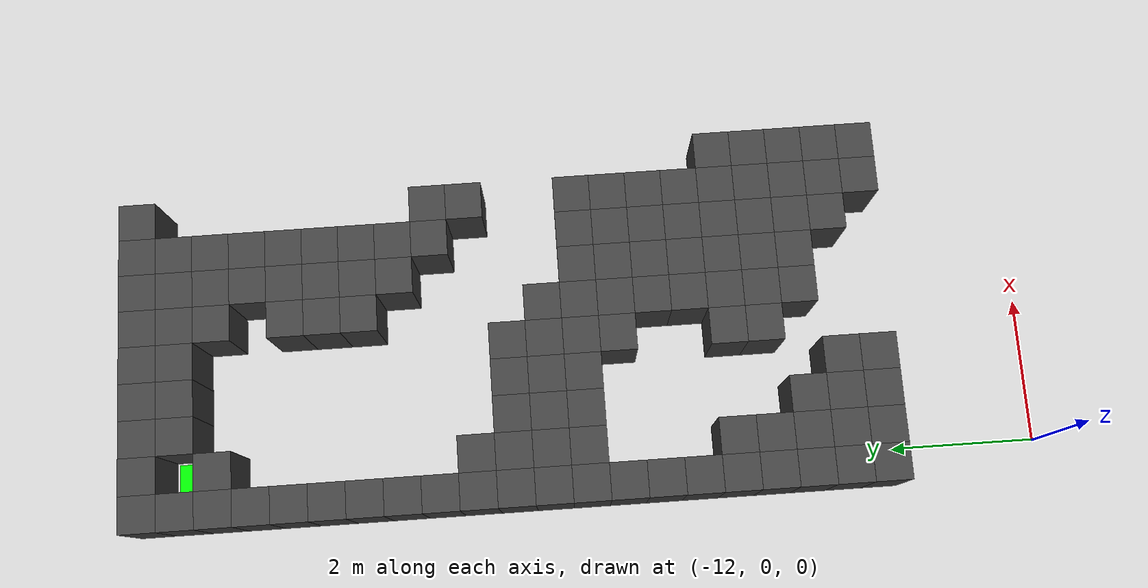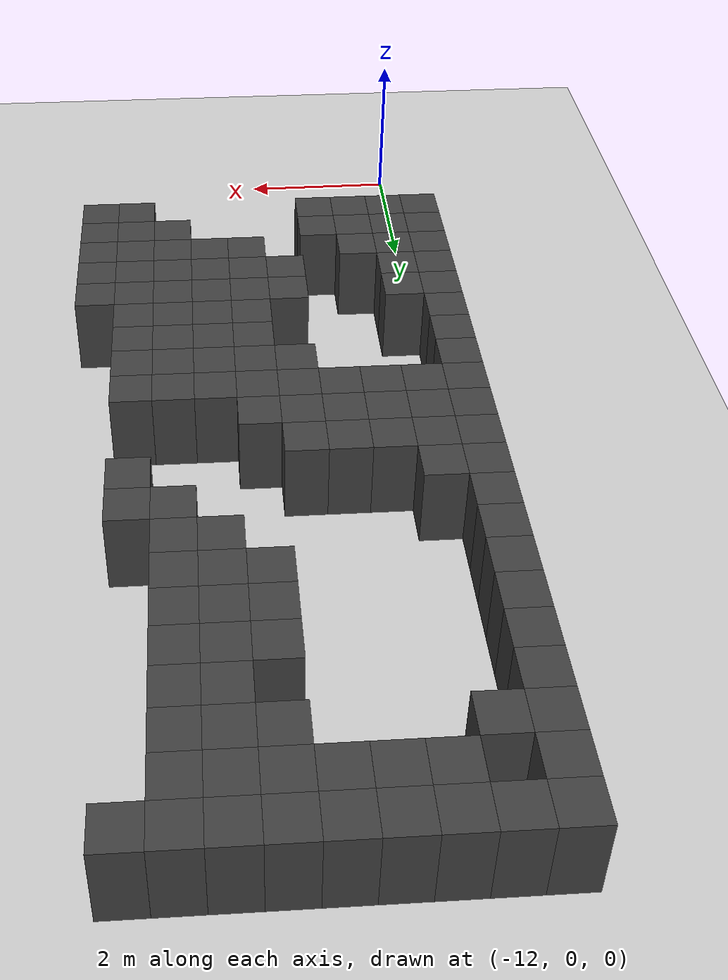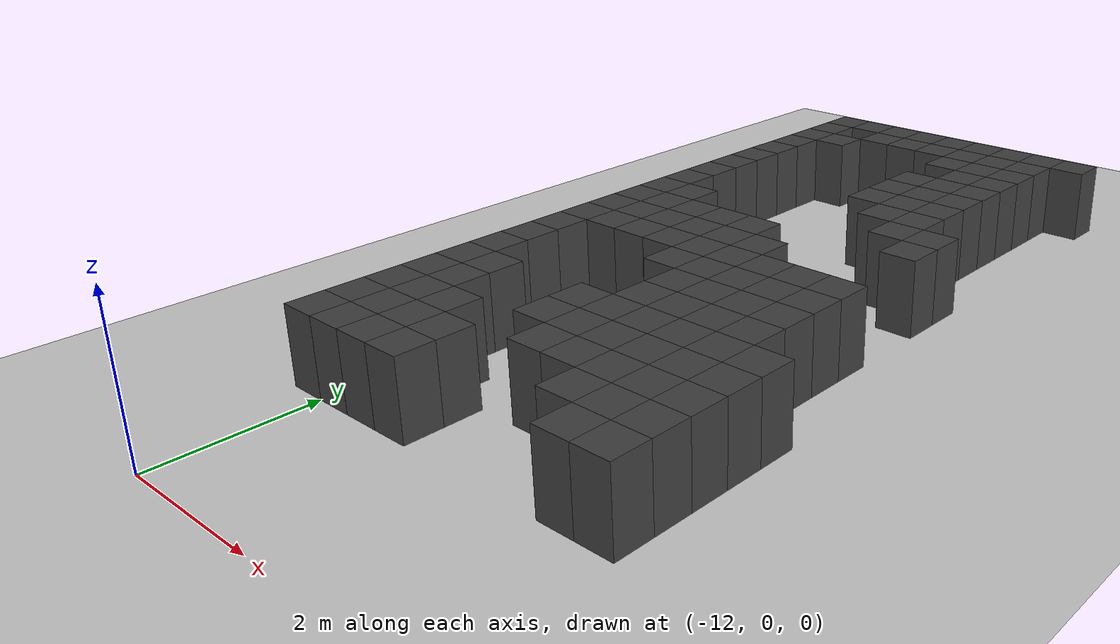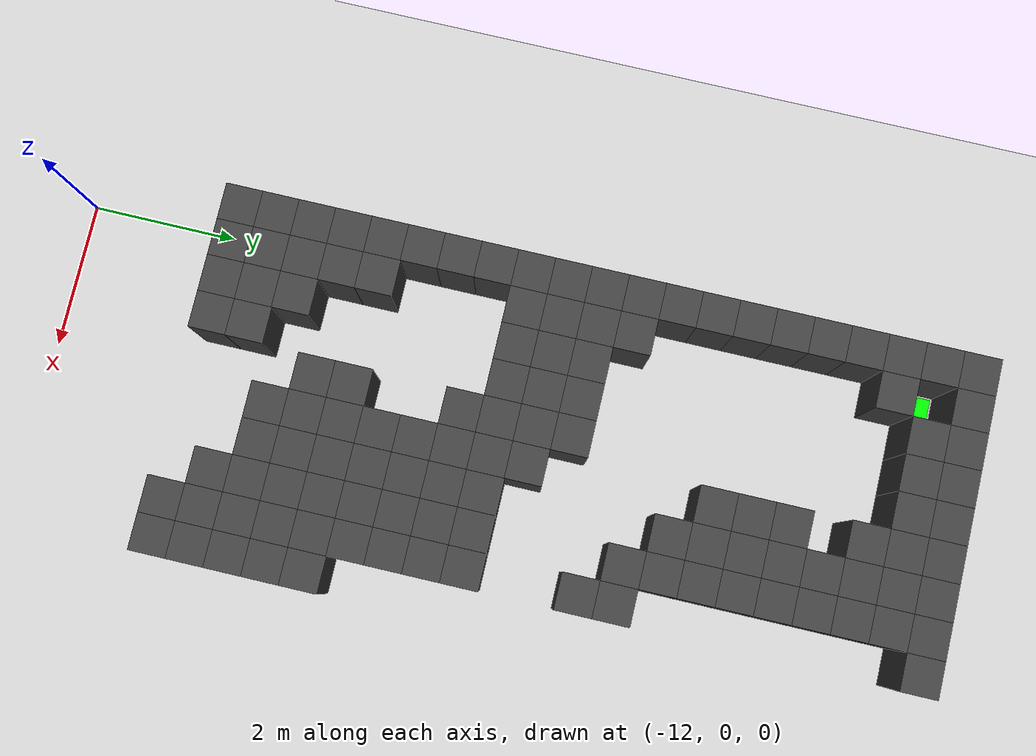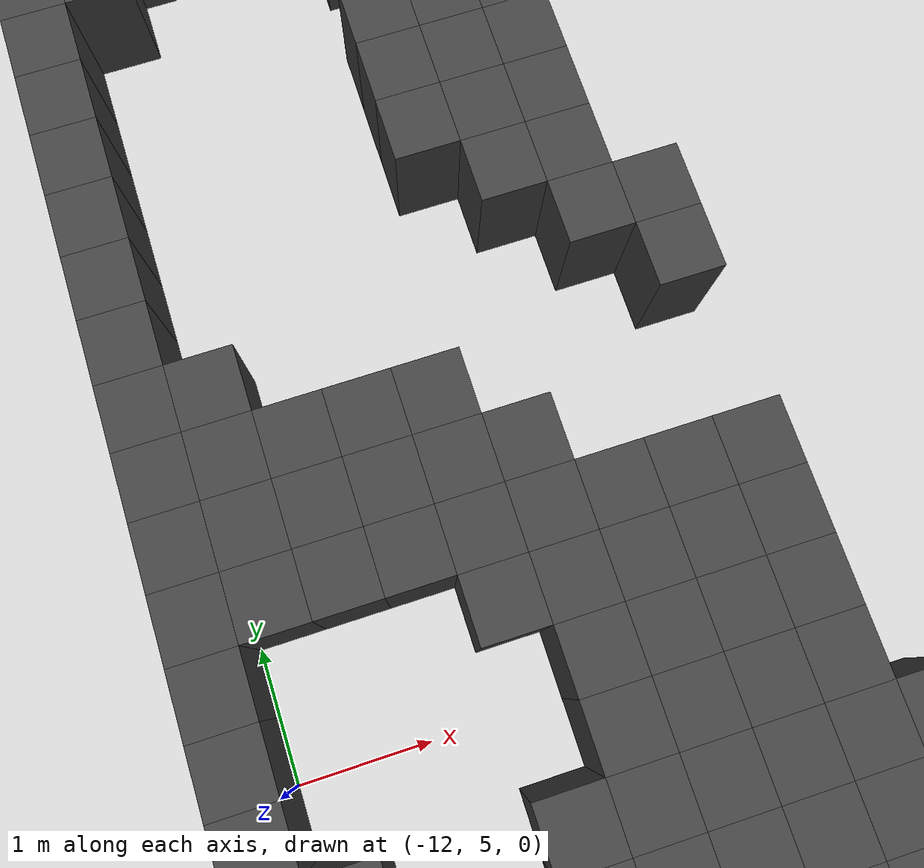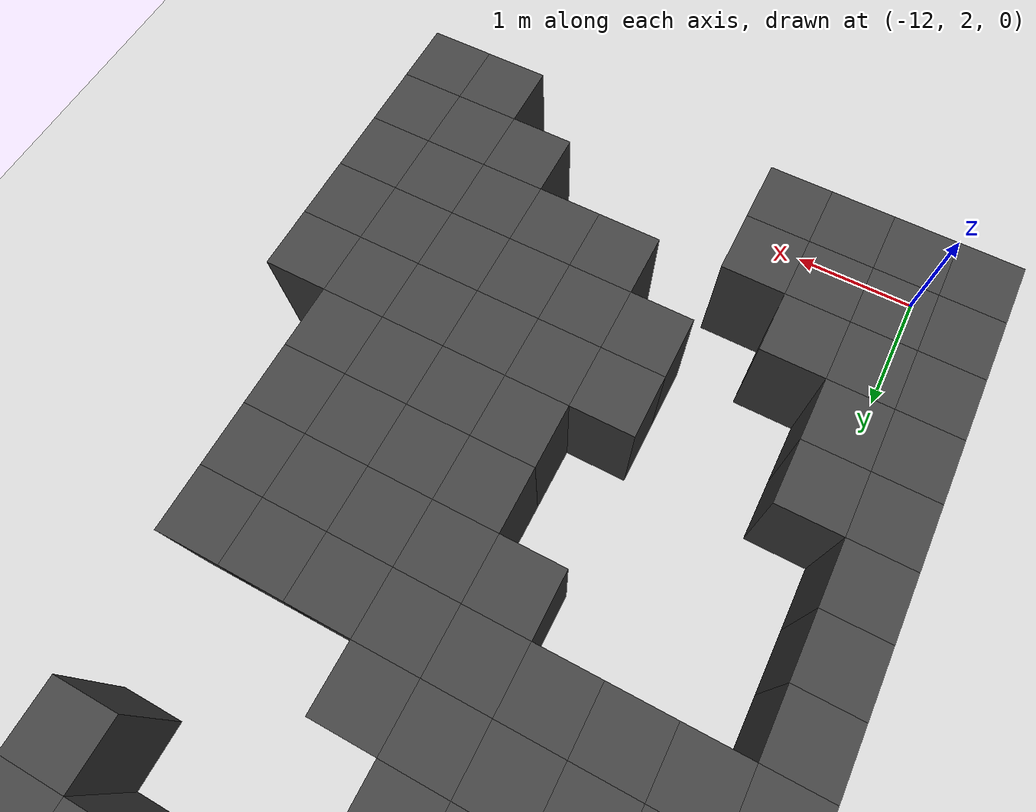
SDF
<sdf version="1.7">
 <world name="map_9705">
  <model name="ground_plane">
   <static>true</static>
   <link name="link">
    <collision name="collision">
     <geometry><plane><normal>0 0 1</normal><size>200 200</size></plane></geometry>
    </collision>
    <visual name="visual">
     <geometry><plane><normal>0 0 1</normal><size>200 200</size></plane></geometry>
     <material><ambient>0.8 0.8 0.8 1</ambient><diffuse>0.8 0.8 0.8 1</diffuse></material>
    </visual>
   </link>
  </model>
  <model name="maze_environment">
   <static>true</static>
   <link name="wall_0">
    <pose>-12.250 12.250 0.500 0 0 0</pose>
    <collision name="col"><geometry><box><size>0.5 0.5 1.0</size></box></geometry></collision>
    <visual name="vis">
     <geometry><box><size>0.5 0.5 1.0</size></box></geometry>
     <material><ambient>0.15 0.15 0.15 1</ambient><diffuse>0.25 0.25 0.25 1</diffuse></material>
    </visual>
   </link>
   <link name="wall_1">
    <pose>-11.750 12.250 0.500 0 0 0</pose>
    <collision name="col"><geometry><box><size>0.5 0.5 1.0</size></box></geometry></collision>
    <visual name="vis">
     <geometry><box><size>0.5 0.5 1.0</size></box></geometry>
     <material><ambient>0.15 0.15 0.15 1</ambient><diffuse>0.25 0.25 0.25 1</diffuse></material>
    </visual>
   </link>
   <link name="wall_2">
    <pose>-11.250 12.250 0.500 0 0 0</pose>
    <collision name="col"><geometry><box><size>0.5 0.5 1.0</size></box></geometry></collision>
    <visual name="vis">
     <geometry><box><size>0.5 0.5 1.0</size></box></geometry>
     <material><ambient>0.15 0.15 0.15 1</ambient><diffuse>0.25 0.25 0.25 1</diffuse></material>
    </visual>
   </link>
   <link name="wall_3">
    <pose>-10.750 12.250 0.500 0 0 0</pose>
    <collision name="col"><geometry><box><size>0.5 0.5 1.0</size></box></geometry></collision>
    <visual name="vis">
     <geometry><box><size>0.5 0.5 1.0</size></box></geometry>
     <material><ambient>0.15 0.15 0.15 1</ambient><diffuse>0.25 0.25 0.25 1</diffuse></material>
    </visual>
   </link>
   <link name="wall_4">
    <pose>-10.250 12.250 0.500 0 0 0</pose>
    <collision name="col"><geometry><box><size>0.5 0.5 1.0</size></box></geometry></collision>
    <visual name="vis">
     <geometry><box><size>0.5 0.5 1.0</size></box></geometry>
     <material><ambient>0.15 0.15 0.15 1</ambient><diffuse>0.25 0.25 0.25 1</diffuse></material>
    </visual>
   </link>
   <link name="wall_5">
    <pose>-9.750 12.250 0.500 0 0 0</pose>
    <collision name="col"><geometry><box><size>0.5 0.5 1.0</size></box></geometry></collision>
    <visual name="vis">
     <geometry><box><size>0.5 0.5 1.0</size></box></geometry>
     <material><ambient>0.15 0.15 0.15 1</ambient><diffuse>0.25 0.25 0.25 1</diffuse></material>
    </visual>
   </link>
   <link name="wall_6">
    <pose>-9.250 12.250 0.500 0 0 0</pose>
    <collision name="col"><geometry><box><size>0.5 0.5 1.0</size></box></geometry></collision>
    <visual name="vis">
     <geometry><box><size>0.5 0.5 1.0</size></box></geometry>
     <material><ambient>0.15 0.15 0.15 1</ambient><diffuse>0.25 0.25 0.25 1</diffuse></material>
    </visual>
   </link>
   <link name="wall_7">
    <pose>-8.750 12.250 0.500 0 0 0</pose>
    <collision name="col"><geometry><box><size>0.5 0.5 1.0</size></box></geometry></collision>
    <visual name="vis">
     <geometry><box><size>0.5 0.5 1.0</size></box></geometry>
     <material><ambient>0.15 0.15 0.15 1</ambient><diffuse>0.25 0.25 0.25 1</diffuse></material>
    </visual>
   </link>
   <link name="wall_8">
    <pose>-8.250 12.250 0.500 0 0 0</pose>
    <collision name="col"><geometry><box><size>0.5 0.5 1.0</size></box></geometry></collision>
    <visual name="vis">
     <geometry><box><size>0.5 0.5 1.0</size></box></geometry>
     <material><ambient>0.15 0.15 0.15 1</ambient><diffuse>0.25 0.25 0.25 1</diffuse></material>
    </visual>
   </link>
   <link name="wall_50">
    <pose>-12.250 11.750 0.500 0 0 0</pose>
    <collision name="col"><geometry><box><size>0.5 0.5 1.0</size></box></geometry></collision>
    <visual name="vis">
     <geometry><box><size>0.5 0.5 1.0</size></box></geometry>
     <material><ambient>0.15 0.15 0.15 1</ambient><diffuse>0.25 0.25 0.25 1</diffuse></material>
    </visual>
   </link>
   <link name="wall_51">
    <pose>-11.250 11.750 0.500 0 0 0</pose>
    <collision name="col"><geometry><box><size>0.5 0.5 1.0</size></box></geometry></collision>
    <visual name="vis">
     <geometry><box><size>0.5 0.5 1.0</size></box></geometry>
     <material><ambient>0.15 0.15 0.15 1</ambient><diffuse>0.25 0.25 0.25 1</diffuse></material>
    </visual>
   </link>
   <link name="wall_52">
    <pose>-10.750 11.750 0.500 0 0 0</pose>
    <collision name="col"><geometry><box><size>0.5 0.5 1.0</size></box></geometry></collision>
    <visual name="vis">
     <geometry><box><size>0.5 0.5 1.0</size></box></geometry>
     <material><ambient>0.15 0.15 0.15 1</ambient><diffuse>0.25 0.25 0.25 1</diffuse></material>
    </visual>
   </link>
   <link name="wall_53">
    <pose>-10.250 11.750 0.500 0 0 0</pose>
    <collision name="col"><geometry><box><size>0.5 0.5 1.0</size></box></geometry></collision>
    <visual name="vis">
     <geometry><box><size>0.5 0.5 1.0</size></box></geometry>
     <material><ambient>0.15 0.15 0.15 1</ambient><diffuse>0.25 0.25 0.25 1</diffuse></material>
    </visual>
   </link>
   <link name="wall_54">
    <pose>-9.750 11.750 0.500 0 0 0</pose>
    <collision name="col"><geometry><box><size>0.5 0.5 1.0</size></box></geometry></collision>
    <visual name="vis">
     <geometry><box><size>0.5 0.5 1.0</size></box></geometry>
     <material><ambient>0.15 0.15 0.15 1</ambient><diffuse>0.25 0.25 0.25 1</diffuse></material>
    </visual>
   </link>
   <link name="wall_55">
    <pose>-9.250 11.750 0.500 0 0 0</pose>
    <collision name="col"><geometry><box><size>0.5 0.5 1.0</size></box></geometry></collision>
    <visual name="vis">
     <geometry><box><size>0.5 0.5 1.0</size></box></geometry>
     <material><ambient>0.15 0.15 0.15 1</ambient><diffuse>0.25 0.25 0.25 1</diffuse></material>
    </visual>
   </link>
   <link name="wall_56">
    <pose>-8.750 11.750 0.500 0 0 0</pose>
    <collision name="col"><geometry><box><size>0.5 0.5 1.0</size></box></geometry></collision>
    <visual name="vis">
     <geometry><box><size>0.5 0.5 1.0</size></box></geometry>
     <material><ambient>0.15 0.15 0.15 1</ambient><diffuse>0.25 0.25 0.25 1</diffuse></material>
    </visual>
   </link>
   <link name="wall_79">
    <pose>-12.250 11.250 0.500 0 0 0</pose>
    <collision name="col"><geometry><box><size>0.5 0.5 1.0</size></box></geometry></collision>
    <visual name="vis">
     <geometry><box><size>0.5 0.5 1.0</size></box></geometry>
     <material><ambient>0.15 0.15 0.15 1</ambient><diffuse>0.25 0.25 0.25 1</diffuse></material>
    </visual>
   </link>
   <link name="wall_80">
    <pose>-11.750 11.250 0.500 0 0 0</pose>
    <collision name="col"><geometry><box><size>0.5 0.5 1.0</size></box></geometry></collision>
    <visual name="vis">
     <geometry><box><size>0.5 0.5 1.0</size></box></geometry>
     <material><ambient>0.15 0.15 0.15 1</ambient><diffuse>0.25 0.25 0.25 1</diffuse></material>
    </visual>
   </link>
   <link name="wall_81">
    <pose>-9.750 11.250 0.500 0 0 0</pose>
    <collision name="col"><geometry><box><size>0.5 0.5 1.0</size></box></geometry></collision>
    <visual name="vis">
     <geometry><box><size>0.5 0.5 1.0</size></box></geometry>
     <material><ambient>0.15 0.15 0.15 1</ambient><diffuse>0.25 0.25 0.25 1</diffuse></material>
    </visual>
   </link>
   <link name="wall_82">
    <pose>-9.250 11.250 0.500 0 0 0</pose>
    <collision name="col"><geometry><box><size>0.5 0.5 1.0</size></box></geometry></collision>
    <visual name="vis">
     <geometry><box><size>0.5 0.5 1.0</size></box></geometry>
     <material><ambient>0.15 0.15 0.15 1</ambient><diffuse>0.25 0.25 0.25 1</diffuse></material>
    </visual>
   </link>
   <link name="wall_83">
    <pose>-8.750 11.250 0.500 0 0 0</pose>
    <collision name="col"><geometry><box><size>0.5 0.5 1.0</size></box></geometry></collision>
    <visual name="vis">
     <geometry><box><size>0.5 0.5 1.0</size></box></geometry>
     <material><ambient>0.15 0.15 0.15 1</ambient><diffuse>0.25 0.25 0.25 1</diffuse></material>
    </visual>
   </link>
   <link name="wall_99">
    <pose>-12.250 10.750 0.500 0 0 0</pose>
    <collision name="col"><geometry><box><size>0.5 0.5 1.0</size></box></geometry></collision>
    <visual name="vis">
     <geometry><box><size>0.5 0.5 1.0</size></box></geometry>
     <material><ambient>0.15 0.15 0.15 1</ambient><diffuse>0.25 0.25 0.25 1</diffuse></material>
    </visual>
   </link>
   <link name="wall_100">
    <pose>-9.250 10.750 0.500 0 0 0</pose>
    <collision name="col"><geometry><box><size>0.5 0.5 1.0</size></box></geometry></collision>
    <visual name="vis">
     <geometry><box><size>0.5 0.5 1.0</size></box></geometry>
     <material><ambient>0.15 0.15 0.15 1</ambient><diffuse>0.25 0.25 0.25 1</diffuse></material>
    </visual>
   </link>
   <link name="wall_101">
    <pose>-8.750 10.750 0.500 0 0 0</pose>
    <collision name="col"><geometry><box><size>0.5 0.5 1.0</size></box></geometry></collision>
    <visual name="vis">
     <geometry><box><size>0.5 0.5 1.0</size></box></geometry>
     <material><ambient>0.15 0.15 0.15 1</ambient><diffuse>0.25 0.25 0.25 1</diffuse></material>
    </visual>
   </link>
   <link name="wall_114">
    <pose>-12.250 10.250 0.500 0 0 0</pose>
    <collision name="col"><geometry><box><size>0.5 0.5 1.0</size></box></geometry></collision>
    <visual name="vis">
     <geometry><box><size>0.5 0.5 1.0</size></box></geometry>
     <material><ambient>0.15 0.15 0.15 1</ambient><diffuse>0.25 0.25 0.25 1</diffuse></material>
    </visual>
   </link>
   <link name="wall_115">
    <pose>-9.750 10.250 0.500 0 0 0</pose>
    <collision name="col"><geometry><box><size>0.5 0.5 1.0</size></box></geometry></collision>
    <visual name="vis">
     <geometry><box><size>0.5 0.5 1.0</size></box></geometry>
     <material><ambient>0.15 0.15 0.15 1</ambient><diffuse>0.25 0.25 0.25 1</diffuse></material>
    </visual>
   </link>
   <link name="wall_116">
    <pose>-9.250 10.250 0.500 0 0 0</pose>
    <collision name="col"><geometry><box><size>0.5 0.5 1.0</size></box></geometry></collision>
    <visual name="vis">
     <geometry><box><size>0.5 0.5 1.0</size></box></geometry>
     <material><ambient>0.15 0.15 0.15 1</ambient><diffuse>0.25 0.25 0.25 1</diffuse></material>
    </visual>
   </link>
   <link name="wall_117">
    <pose>-8.750 10.250 0.500 0 0 0</pose>
    <collision name="col"><geometry><box><size>0.5 0.5 1.0</size></box></geometry></collision>
    <visual name="vis">
     <geometry><box><size>0.5 0.5 1.0</size></box></geometry>
     <material><ambient>0.15 0.15 0.15 1</ambient><diffuse>0.25 0.25 0.25 1</diffuse></material>
    </visual>
   </link>
   <link name="wall_133">
    <pose>-12.250 9.750 0.500 0 0 0</pose>
    <collision name="col"><geometry><box><size>0.5 0.5 1.0</size></box></geometry></collision>
    <visual name="vis">
     <geometry><box><size>0.5 0.5 1.0</size></box></geometry>
     <material><ambient>0.15 0.15 0.15 1</ambient><diffuse>0.25 0.25 0.25 1</diffuse></material>
    </visual>
   </link>
   <link name="wall_134">
    <pose>-9.750 9.750 0.500 0 0 0</pose>
    <collision name="col"><geometry><box><size>0.5 0.5 1.0</size></box></geometry></collision>
    <visual name="vis">
     <geometry><box><size>0.5 0.5 1.0</size></box></geometry>
     <material><ambient>0.15 0.15 0.15 1</ambient><diffuse>0.25 0.25 0.25 1</diffuse></material>
    </visual>
   </link>
   <link name="wall_135">
    <pose>-9.250 9.750 0.500 0 0 0</pose>
    <collision name="col"><geometry><box><size>0.5 0.5 1.0</size></box></geometry></collision>
    <visual name="vis">
     <geometry><box><size>0.5 0.5 1.0</size></box></geometry>
     <material><ambient>0.15 0.15 0.15 1</ambient><diffuse>0.25 0.25 0.25 1</diffuse></material>
    </visual>
   </link>
   <link name="wall_136">
    <pose>-8.750 9.750 0.500 0 0 0</pose>
    <collision name="col"><geometry><box><size>0.5 0.5 1.0</size></box></geometry></collision>
    <visual name="vis">
     <geometry><box><size>0.5 0.5 1.0</size></box></geometry>
     <material><ambient>0.15 0.15 0.15 1</ambient><diffuse>0.25 0.25 0.25 1</diffuse></material>
    </visual>
   </link>
   <link name="wall_156">
    <pose>-12.250 9.250 0.500 0 0 0</pose>
    <collision name="col"><geometry><box><size>0.5 0.5 1.0</size></box></geometry></collision>
    <visual name="vis">
     <geometry><box><size>0.5 0.5 1.0</size></box></geometry>
     <material><ambient>0.15 0.15 0.15 1</ambient><diffuse>0.25 0.25 0.25 1</diffuse></material>
    </visual>
   </link>
   <link name="wall_157">
    <pose>-9.750 9.250 0.500 0 0 0</pose>
    <collision name="col"><geometry><box><size>0.5 0.5 1.0</size></box></geometry></collision>
    <visual name="vis">
     <geometry><box><size>0.5 0.5 1.0</size></box></geometry>
     <material><ambient>0.15 0.15 0.15 1</ambient><diffuse>0.25 0.25 0.25 1</diffuse></material>
    </visual>
   </link>
   <link name="wall_158">
    <pose>-9.250 9.250 0.500 0 0 0</pose>
    <collision name="col"><geometry><box><size>0.5 0.5 1.0</size></box></geometry></collision>
    <visual name="vis">
     <geometry><box><size>0.5 0.5 1.0</size></box></geometry>
     <material><ambient>0.15 0.15 0.15 1</ambient><diffuse>0.25 0.25 0.25 1</diffuse></material>
    </visual>
   </link>
   <link name="wall_159">
    <pose>-8.750 9.250 0.500 0 0 0</pose>
    <collision name="col"><geometry><box><size>0.5 0.5 1.0</size></box></geometry></collision>
    <visual name="vis">
     <geometry><box><size>0.5 0.5 1.0</size></box></geometry>
     <material><ambient>0.15 0.15 0.15 1</ambient><diffuse>0.25 0.25 0.25 1</diffuse></material>
    </visual>
   </link>
   <link name="wall_180">
    <pose>-12.250 8.750 0.500 0 0 0</pose>
    <collision name="col"><geometry><box><size>0.5 0.5 1.0</size></box></geometry></collision>
    <visual name="vis">
     <geometry><box><size>0.5 0.5 1.0</size></box></geometry>
     <material><ambient>0.15 0.15 0.15 1</ambient><diffuse>0.25 0.25 0.25 1</diffuse></material>
    </visual>
   </link>
   <link name="wall_181">
    <pose>-9.250 8.750 0.500 0 0 0</pose>
    <collision name="col"><geometry><box><size>0.5 0.5 1.0</size></box></geometry></collision>
    <visual name="vis">
     <geometry><box><size>0.5 0.5 1.0</size></box></geometry>
     <material><ambient>0.15 0.15 0.15 1</ambient><diffuse>0.25 0.25 0.25 1</diffuse></material>
    </visual>
   </link>
   <link name="wall_182">
    <pose>-8.750 8.750 0.500 0 0 0</pose>
    <collision name="col"><geometry><box><size>0.5 0.5 1.0</size></box></geometry></collision>
    <visual name="vis">
     <geometry><box><size>0.5 0.5 1.0</size></box></geometry>
     <material><ambient>0.15 0.15 0.15 1</ambient><diffuse>0.25 0.25 0.25 1</diffuse></material>
    </visual>
   </link>
   <link name="wall_196">
    <pose>-12.250 8.250 0.500 0 0 0</pose>
    <collision name="col"><geometry><box><size>0.5 0.5 1.0</size></box></geometry></collision>
    <visual name="vis">
     <geometry><box><size>0.5 0.5 1.0</size></box></geometry>
     <material><ambient>0.15 0.15 0.15 1</ambient><diffuse>0.25 0.25 0.25 1</diffuse></material>
    </visual>
   </link>
   <link name="wall_197">
    <pose>-8.750 8.250 0.500 0 0 0</pose>
    <collision name="col"><geometry><box><size>0.5 0.5 1.0</size></box></geometry></collision>
    <visual name="vis">
     <geometry><box><size>0.5 0.5 1.0</size></box></geometry>
     <material><ambient>0.15 0.15 0.15 1</ambient><diffuse>0.25 0.25 0.25 1</diffuse></material>
    </visual>
   </link>
   <link name="wall_198">
    <pose>-8.250 8.250 0.500 0 0 0</pose>
    <collision name="col"><geometry><box><size>0.5 0.5 1.0</size></box></geometry></collision>
    <visual name="vis">
     <geometry><box><size>0.5 0.5 1.0</size></box></geometry>
     <material><ambient>0.15 0.15 0.15 1</ambient><diffuse>0.25 0.25 0.25 1</diffuse></material>
    </visual>
   </link>
   <link name="wall_209">
    <pose>-12.250 7.750 0.500 0 0 0</pose>
    <collision name="col"><geometry><box><size>0.5 0.5 1.0</size></box></geometry></collision>
    <visual name="vis">
     <geometry><box><size>0.5 0.5 1.0</size></box></geometry>
     <material><ambient>0.15 0.15 0.15 1</ambient><diffuse>0.25 0.25 0.25 1</diffuse></material>
    </visual>
   </link>
   <link name="wall_210">
    <pose>-11.750 7.750 0.500 0 0 0</pose>
    <collision name="col"><geometry><box><size>0.5 0.5 1.0</size></box></geometry></collision>
    <visual name="vis">
     <geometry><box><size>0.5 0.5 1.0</size></box></geometry>
     <material><ambient>0.15 0.15 0.15 1</ambient><diffuse>0.25 0.25 0.25 1</diffuse></material>
    </visual>
   </link>
   <link name="wall_211">
    <pose>-8.250 7.750 0.500 0 0 0</pose>
    <collision name="col"><geometry><box><size>0.5 0.5 1.0</size></box></geometry></collision>
    <visual name="vis">
     <geometry><box><size>0.5 0.5 1.0</size></box></geometry>
     <material><ambient>0.15 0.15 0.15 1</ambient><diffuse>0.25 0.25 0.25 1</diffuse></material>
    </visual>
   </link>
   <link name="wall_218">
    <pose>-12.250 7.250 0.500 0 0 0</pose>
    <collision name="col"><geometry><box><size>0.5 0.5 1.0</size></box></geometry></collision>
    <visual name="vis">
     <geometry><box><size>0.5 0.5 1.0</size></box></geometry>
     <material><ambient>0.15 0.15 0.15 1</ambient><diffuse>0.25 0.25 0.25 1</diffuse></material>
    </visual>
   </link>
   <link name="wall_219">
    <pose>-11.750 7.250 0.500 0 0 0</pose>
    <collision name="col"><geometry><box><size>0.5 0.5 1.0</size></box></geometry></collision>
    <visual name="vis">
     <geometry><box><size>0.5 0.5 1.0</size></box></geometry>
     <material><ambient>0.15 0.15 0.15 1</ambient><diffuse>0.25 0.25 0.25 1</diffuse></material>
    </visual>
   </link>
   <link name="wall_220">
    <pose>-11.250 7.250 0.500 0 0 0</pose>
    <collision name="col"><geometry><box><size>0.5 0.5 1.0</size></box></geometry></collision>
    <visual name="vis">
     <geometry><box><size>0.5 0.5 1.0</size></box></geometry>
     <material><ambient>0.15 0.15 0.15 1</ambient><diffuse>0.25 0.25 0.25 1</diffuse></material>
    </visual>
   </link>
   <link name="wall_221">
    <pose>-10.750 7.250 0.500 0 0 0</pose>
    <collision name="col"><geometry><box><size>0.5 0.5 1.0</size></box></geometry></collision>
    <visual name="vis">
     <geometry><box><size>0.5 0.5 1.0</size></box></geometry>
     <material><ambient>0.15 0.15 0.15 1</ambient><diffuse>0.25 0.25 0.25 1</diffuse></material>
    </visual>
   </link>
   <link name="wall_222">
    <pose>-10.250 7.250 0.500 0 0 0</pose>
    <collision name="col"><geometry><box><size>0.5 0.5 1.0</size></box></geometry></collision>
    <visual name="vis">
     <geometry><box><size>0.5 0.5 1.0</size></box></geometry>
     <material><ambient>0.15 0.15 0.15 1</ambient><diffuse>0.25 0.25 0.25 1</diffuse></material>
    </visual>
   </link>
   <link name="wall_231">
    <pose>-12.250 6.750 0.500 0 0 0</pose>
    <collision name="col"><geometry><box><size>0.5 0.5 1.0</size></box></geometry></collision>
    <visual name="vis">
     <geometry><box><size>0.5 0.5 1.0</size></box></geometry>
     <material><ambient>0.15 0.15 0.15 1</ambient><diffuse>0.25 0.25 0.25 1</diffuse></material>
    </visual>
   </link>
   <link name="wall_232">
    <pose>-11.750 6.750 0.500 0 0 0</pose>
    <collision name="col"><geometry><box><size>0.5 0.5 1.0</size></box></geometry></collision>
    <visual name="vis">
     <geometry><box><size>0.5 0.5 1.0</size></box></geometry>
     <material><ambient>0.15 0.15 0.15 1</ambient><diffuse>0.25 0.25 0.25 1</diffuse></material>
    </visual>
   </link>
   <link name="wall_233">
    <pose>-11.250 6.750 0.500 0 0 0</pose>
    <collision name="col"><geometry><box><size>0.5 0.5 1.0</size></box></geometry></collision>
    <visual name="vis">
     <geometry><box><size>0.5 0.5 1.0</size></box></geometry>
     <material><ambient>0.15 0.15 0.15 1</ambient><diffuse>0.25 0.25 0.25 1</diffuse></material>
    </visual>
   </link>
   <link name="wall_234">
    <pose>-10.750 6.750 0.500 0 0 0</pose>
    <collision name="col"><geometry><box><size>0.5 0.5 1.0</size></box></geometry></collision>
    <visual name="vis">
     <geometry><box><size>0.5 0.5 1.0</size></box></geometry>
     <material><ambient>0.15 0.15 0.15 1</ambient><diffuse>0.25 0.25 0.25 1</diffuse></material>
    </visual>
   </link>
   <link name="wall_235">
    <pose>-10.250 6.750 0.500 0 0 0</pose>
    <collision name="col"><geometry><box><size>0.5 0.5 1.0</size></box></geometry></collision>
    <visual name="vis">
     <geometry><box><size>0.5 0.5 1.0</size></box></geometry>
     <material><ambient>0.15 0.15 0.15 1</ambient><diffuse>0.25 0.25 0.25 1</diffuse></material>
    </visual>
   </link>
   <link name="wall_236">
    <pose>-9.750 6.750 0.500 0 0 0</pose>
    <collision name="col"><geometry><box><size>0.5 0.5 1.0</size></box></geometry></collision>
    <visual name="vis">
     <geometry><box><size>0.5 0.5 1.0</size></box></geometry>
     <material><ambient>0.15 0.15 0.15 1</ambient><diffuse>0.25 0.25 0.25 1</diffuse></material>
    </visual>
   </link>
   <link name="wall_252">
    <pose>-12.250 6.250 0.500 0 0 0</pose>
    <collision name="col"><geometry><box><size>0.5 0.5 1.0</size></box></geometry></collision>
    <visual name="vis">
     <geometry><box><size>0.5 0.5 1.0</size></box></geometry>
     <material><ambient>0.15 0.15 0.15 1</ambient><diffuse>0.25 0.25 0.25 1</diffuse></material>
    </visual>
   </link>
   <link name="wall_253">
    <pose>-11.750 6.250 0.500 0 0 0</pose>
    <collision name="col"><geometry><box><size>0.5 0.5 1.0</size></box></geometry></collision>
    <visual name="vis">
     <geometry><box><size>0.5 0.5 1.0</size></box></geometry>
     <material><ambient>0.15 0.15 0.15 1</ambient><diffuse>0.25 0.25 0.25 1</diffuse></material>
    </visual>
   </link>
   <link name="wall_254">
    <pose>-11.250 6.250 0.500 0 0 0</pose>
    <collision name="col"><geometry><box><size>0.5 0.5 1.0</size></box></geometry></collision>
    <visual name="vis">
     <geometry><box><size>0.5 0.5 1.0</size></box></geometry>
     <material><ambient>0.15 0.15 0.15 1</ambient><diffuse>0.25 0.25 0.25 1</diffuse></material>
    </visual>
   </link>
   <link name="wall_255">
    <pose>-10.750 6.250 0.500 0 0 0</pose>
    <collision name="col"><geometry><box><size>0.5 0.5 1.0</size></box></geometry></collision>
    <visual name="vis">
     <geometry><box><size>0.5 0.5 1.0</size></box></geometry>
     <material><ambient>0.15 0.15 0.15 1</ambient><diffuse>0.25 0.25 0.25 1</diffuse></material>
    </visual>
   </link>
   <link name="wall_256">
    <pose>-10.250 6.250 0.500 0 0 0</pose>
    <collision name="col"><geometry><box><size>0.5 0.5 1.0</size></box></geometry></collision>
    <visual name="vis">
     <geometry><box><size>0.5 0.5 1.0</size></box></geometry>
     <material><ambient>0.15 0.15 0.15 1</ambient><diffuse>0.25 0.25 0.25 1</diffuse></material>
    </visual>
   </link>
   <link name="wall_257">
    <pose>-9.750 6.250 0.500 0 0 0</pose>
    <collision name="col"><geometry><box><size>0.5 0.5 1.0</size></box></geometry></collision>
    <visual name="vis">
     <geometry><box><size>0.5 0.5 1.0</size></box></geometry>
     <material><ambient>0.15 0.15 0.15 1</ambient><diffuse>0.25 0.25 0.25 1</diffuse></material>
    </visual>
   </link>
   <link name="wall_258">
    <pose>-9.250 6.250 0.500 0 0 0</pose>
    <collision name="col"><geometry><box><size>0.5 0.5 1.0</size></box></geometry></collision>
    <visual name="vis">
     <geometry><box><size>0.5 0.5 1.0</size></box></geometry>
     <material><ambient>0.15 0.15 0.15 1</ambient><diffuse>0.25 0.25 0.25 1</diffuse></material>
    </visual>
   </link>
   <link name="wall_259">
    <pose>-8.750 6.250 0.500 0 0 0</pose>
    <collision name="col"><geometry><box><size>0.5 0.5 1.0</size></box></geometry></collision>
    <visual name="vis">
     <geometry><box><size>0.5 0.5 1.0</size></box></geometry>
     <material><ambient>0.15 0.15 0.15 1</ambient><diffuse>0.25 0.25 0.25 1</diffuse></material>
    </visual>
   </link>
   <link name="wall_260">
    <pose>-8.250 6.250 0.500 0 0 0</pose>
    <collision name="col"><geometry><box><size>0.5 0.5 1.0</size></box></geometry></collision>
    <visual name="vis">
     <geometry><box><size>0.5 0.5 1.0</size></box></geometry>
     <material><ambient>0.15 0.15 0.15 1</ambient><diffuse>0.25 0.25 0.25 1</diffuse></material>
    </visual>
   </link>
   <link name="wall_285">
    <pose>-12.250 5.750 0.500 0 0 0</pose>
    <collision name="col"><geometry><box><size>0.5 0.5 1.0</size></box></geometry></collision>
    <visual name="vis">
     <geometry><box><size>0.5 0.5 1.0</size></box></geometry>
     <material><ambient>0.15 0.15 0.15 1</ambient><diffuse>0.25 0.25 0.25 1</diffuse></material>
    </visual>
   </link>
   <link name="wall_286">
    <pose>-10.250 5.750 0.500 0 0 0</pose>
    <collision name="col"><geometry><box><size>0.5 0.5 1.0</size></box></geometry></collision>
    <visual name="vis">
     <geometry><box><size>0.5 0.5 1.0</size></box></geometry>
     <material><ambient>0.15 0.15 0.15 1</ambient><diffuse>0.25 0.25 0.25 1</diffuse></material>
    </visual>
   </link>
   <link name="wall_287">
    <pose>-9.750 5.750 0.500 0 0 0</pose>
    <collision name="col"><geometry><box><size>0.5 0.5 1.0</size></box></geometry></collision>
    <visual name="vis">
     <geometry><box><size>0.5 0.5 1.0</size></box></geometry>
     <material><ambient>0.15 0.15 0.15 1</ambient><diffuse>0.25 0.25 0.25 1</diffuse></material>
    </visual>
   </link>
   <link name="wall_288">
    <pose>-9.250 5.750 0.500 0 0 0</pose>
    <collision name="col"><geometry><box><size>0.5 0.5 1.0</size></box></geometry></collision>
    <visual name="vis">
     <geometry><box><size>0.5 0.5 1.0</size></box></geometry>
     <material><ambient>0.15 0.15 0.15 1</ambient><diffuse>0.25 0.25 0.25 1</diffuse></material>
    </visual>
   </link>
   <link name="wall_289">
    <pose>-8.750 5.750 0.500 0 0 0</pose>
    <collision name="col"><geometry><box><size>0.5 0.5 1.0</size></box></geometry></collision>
    <visual name="vis">
     <geometry><box><size>0.5 0.5 1.0</size></box></geometry>
     <material><ambient>0.15 0.15 0.15 1</ambient><diffuse>0.25 0.25 0.25 1</diffuse></material>
    </visual>
   </link>
   <link name="wall_290">
    <pose>-8.250 5.750 0.500 0 0 0</pose>
    <collision name="col"><geometry><box><size>0.5 0.5 1.0</size></box></geometry></collision>
    <visual name="vis">
     <geometry><box><size>0.5 0.5 1.0</size></box></geometry>
     <material><ambient>0.15 0.15 0.15 1</ambient><diffuse>0.25 0.25 0.25 1</diffuse></material>
    </visual>
   </link>
   <link name="wall_318">
    <pose>-12.250 5.250 0.500 0 0 0</pose>
    <collision name="col"><geometry><box><size>0.5 0.5 1.0</size></box></geometry></collision>
    <visual name="vis">
     <geometry><box><size>0.5 0.5 1.0</size></box></geometry>
     <material><ambient>0.15 0.15 0.15 1</ambient><diffuse>0.25 0.25 0.25 1</diffuse></material>
    </visual>
   </link>
   <link name="wall_319">
    <pose>-9.750 5.250 0.500 0 0 0</pose>
    <collision name="col"><geometry><box><size>0.5 0.5 1.0</size></box></geometry></collision>
    <visual name="vis">
     <geometry><box><size>0.5 0.5 1.0</size></box></geometry>
     <material><ambient>0.15 0.15 0.15 1</ambient><diffuse>0.25 0.25 0.25 1</diffuse></material>
    </visual>
   </link>
   <link name="wall_320">
    <pose>-9.250 5.250 0.500 0 0 0</pose>
    <collision name="col"><geometry><box><size>0.5 0.5 1.0</size></box></geometry></collision>
    <visual name="vis">
     <geometry><box><size>0.5 0.5 1.0</size></box></geometry>
     <material><ambient>0.15 0.15 0.15 1</ambient><diffuse>0.25 0.25 0.25 1</diffuse></material>
    </visual>
   </link>
   <link name="wall_321">
    <pose>-8.750 5.250 0.500 0 0 0</pose>
    <collision name="col"><geometry><box><size>0.5 0.5 1.0</size></box></geometry></collision>
    <visual name="vis">
     <geometry><box><size>0.5 0.5 1.0</size></box></geometry>
     <material><ambient>0.15 0.15 0.15 1</ambient><diffuse>0.25 0.25 0.25 1</diffuse></material>
    </visual>
   </link>
   <link name="wall_322">
    <pose>-8.250 5.250 0.500 0 0 0</pose>
    <collision name="col"><geometry><box><size>0.5 0.5 1.0</size></box></geometry></collision>
    <visual name="vis">
     <geometry><box><size>0.5 0.5 1.0</size></box></geometry>
     <material><ambient>0.15 0.15 0.15 1</ambient><diffuse>0.25 0.25 0.25 1</diffuse></material>
    </visual>
   </link>
   <link name="wall_348">
    <pose>-12.250 4.750 0.500 0 0 0</pose>
    <collision name="col"><geometry><box><size>0.5 0.5 1.0</size></box></geometry></collision>
    <visual name="vis">
     <geometry><box><size>0.5 0.5 1.0</size></box></geometry>
     <material><ambient>0.15 0.15 0.15 1</ambient><diffuse>0.25 0.25 0.25 1</diffuse></material>
    </visual>
   </link>
   <link name="wall_349">
    <pose>-9.750 4.750 0.500 0 0 0</pose>
    <collision name="col"><geometry><box><size>0.5 0.5 1.0</size></box></geometry></collision>
    <visual name="vis">
     <geometry><box><size>0.5 0.5 1.0</size></box></geometry>
     <material><ambient>0.15 0.15 0.15 1</ambient><diffuse>0.25 0.25 0.25 1</diffuse></material>
    </visual>
   </link>
   <link name="wall_350">
    <pose>-9.250 4.750 0.500 0 0 0</pose>
    <collision name="col"><geometry><box><size>0.5 0.5 1.0</size></box></geometry></collision>
    <visual name="vis">
     <geometry><box><size>0.5 0.5 1.0</size></box></geometry>
     <material><ambient>0.15 0.15 0.15 1</ambient><diffuse>0.25 0.25 0.25 1</diffuse></material>
    </visual>
   </link>
   <link name="wall_351">
    <pose>-8.750 4.750 0.500 0 0 0</pose>
    <collision name="col"><geometry><box><size>0.5 0.5 1.0</size></box></geometry></collision>
    <visual name="vis">
     <geometry><box><size>0.5 0.5 1.0</size></box></geometry>
     <material><ambient>0.15 0.15 0.15 1</ambient><diffuse>0.25 0.25 0.25 1</diffuse></material>
    </visual>
   </link>
   <link name="wall_352">
    <pose>-8.250 4.750 0.500 0 0 0</pose>
    <collision name="col"><geometry><box><size>0.5 0.5 1.0</size></box></geometry></collision>
    <visual name="vis">
     <geometry><box><size>0.5 0.5 1.0</size></box></geometry>
     <material><ambient>0.15 0.15 0.15 1</ambient><diffuse>0.25 0.25 0.25 1</diffuse></material>
    </visual>
   </link>
   <link name="wall_376">
    <pose>-12.250 4.250 0.500 0 0 0</pose>
    <collision name="col"><geometry><box><size>0.5 0.5 1.0</size></box></geometry></collision>
    <visual name="vis">
     <geometry><box><size>0.5 0.5 1.0</size></box></geometry>
     <material><ambient>0.15 0.15 0.15 1</ambient><diffuse>0.25 0.25 0.25 1</diffuse></material>
    </visual>
   </link>
   <link name="wall_377">
    <pose>-11.750 4.250 0.500 0 0 0</pose>
    <collision name="col"><geometry><box><size>0.5 0.5 1.0</size></box></geometry></collision>
    <visual name="vis">
     <geometry><box><size>0.5 0.5 1.0</size></box></geometry>
     <material><ambient>0.15 0.15 0.15 1</ambient><diffuse>0.25 0.25 0.25 1</diffuse></material>
    </visual>
   </link>
   <link name="wall_378">
    <pose>-10.250 4.250 0.500 0 0 0</pose>
    <collision name="col"><geometry><box><size>0.5 0.5 1.0</size></box></geometry></collision>
    <visual name="vis">
     <geometry><box><size>0.5 0.5 1.0</size></box></geometry>
     <material><ambient>0.15 0.15 0.15 1</ambient><diffuse>0.25 0.25 0.25 1</diffuse></material>
    </visual>
   </link>
   <link name="wall_379">
    <pose>-9.750 4.250 0.500 0 0 0</pose>
    <collision name="col"><geometry><box><size>0.5 0.5 1.0</size></box></geometry></collision>
    <visual name="vis">
     <geometry><box><size>0.5 0.5 1.0</size></box></geometry>
     <material><ambient>0.15 0.15 0.15 1</ambient><diffuse>0.25 0.25 0.25 1</diffuse></material>
    </visual>
   </link>
   <link name="wall_380">
    <pose>-9.250 4.250 0.500 0 0 0</pose>
    <collision name="col"><geometry><box><size>0.5 0.5 1.0</size></box></geometry></collision>
    <visual name="vis">
     <geometry><box><size>0.5 0.5 1.0</size></box></geometry>
     <material><ambient>0.15 0.15 0.15 1</ambient><diffuse>0.25 0.25 0.25 1</diffuse></material>
    </visual>
   </link>
   <link name="wall_381">
    <pose>-8.750 4.250 0.500 0 0 0</pose>
    <collision name="col"><geometry><box><size>0.5 0.5 1.0</size></box></geometry></collision>
    <visual name="vis">
     <geometry><box><size>0.5 0.5 1.0</size></box></geometry>
     <material><ambient>0.15 0.15 0.15 1</ambient><diffuse>0.25 0.25 0.25 1</diffuse></material>
    </visual>
   </link>
   <link name="wall_382">
    <pose>-8.250 4.250 0.500 0 0 0</pose>
    <collision name="col"><geometry><box><size>0.5 0.5 1.0</size></box></geometry></collision>
    <visual name="vis">
     <geometry><box><size>0.5 0.5 1.0</size></box></geometry>
     <material><ambient>0.15 0.15 0.15 1</ambient><diffuse>0.25 0.25 0.25 1</diffuse></material>
    </visual>
   </link>
   <link name="wall_383">
    <pose>-7.750 4.250 0.500 0 0 0</pose>
    <collision name="col"><geometry><box><size>0.5 0.5 1.0</size></box></geometry></collision>
    <visual name="vis">
     <geometry><box><size>0.5 0.5 1.0</size></box></geometry>
     <material><ambient>0.15 0.15 0.15 1</ambient><diffuse>0.25 0.25 0.25 1</diffuse></material>
    </visual>
   </link>
   <link name="wall_405">
    <pose>-12.250 3.750 0.500 0 0 0</pose>
    <collision name="col"><geometry><box><size>0.5 0.5 1.0</size></box></geometry></collision>
    <visual name="vis">
     <geometry><box><size>0.5 0.5 1.0</size></box></geometry>
     <material><ambient>0.15 0.15 0.15 1</ambient><diffuse>0.25 0.25 0.25 1</diffuse></material>
    </visual>
   </link>
   <link name="wall_406">
    <pose>-11.750 3.750 0.500 0 0 0</pose>
    <collision name="col"><geometry><box><size>0.5 0.5 1.0</size></box></geometry></collision>
    <visual name="vis">
     <geometry><box><size>0.5 0.5 1.0</size></box></geometry>
     <material><ambient>0.15 0.15 0.15 1</ambient><diffuse>0.25 0.25 0.25 1</diffuse></material>
    </visual>
   </link>
   <link name="wall_407">
    <pose>-10.250 3.750 0.500 0 0 0</pose>
    <collision name="col"><geometry><box><size>0.5 0.5 1.0</size></box></geometry></collision>
    <visual name="vis">
     <geometry><box><size>0.5 0.5 1.0</size></box></geometry>
     <material><ambient>0.15 0.15 0.15 1</ambient><diffuse>0.25 0.25 0.25 1</diffuse></material>
    </visual>
   </link>
   <link name="wall_408">
    <pose>-9.750 3.750 0.500 0 0 0</pose>
    <collision name="col"><geometry><box><size>0.5 0.5 1.0</size></box></geometry></collision>
    <visual name="vis">
     <geometry><box><size>0.5 0.5 1.0</size></box></geometry>
     <material><ambient>0.15 0.15 0.15 1</ambient><diffuse>0.25 0.25 0.25 1</diffuse></material>
    </visual>
   </link>
   <link name="wall_409">
    <pose>-9.250 3.750 0.500 0 0 0</pose>
    <collision name="col"><geometry><box><size>0.5 0.5 1.0</size></box></geometry></collision>
    <visual name="vis">
     <geometry><box><size>0.5 0.5 1.0</size></box></geometry>
     <material><ambient>0.15 0.15 0.15 1</ambient><diffuse>0.25 0.25 0.25 1</diffuse></material>
    </visual>
   </link>
   <link name="wall_410">
    <pose>-8.750 3.750 0.500 0 0 0</pose>
    <collision name="col"><geometry><box><size>0.5 0.5 1.0</size></box></geometry></collision>
    <visual name="vis">
     <geometry><box><size>0.5 0.5 1.0</size></box></geometry>
     <material><ambient>0.15 0.15 0.15 1</ambient><diffuse>0.25 0.25 0.25 1</diffuse></material>
    </visual>
   </link>
   <link name="wall_411">
    <pose>-8.250 3.750 0.500 0 0 0</pose>
    <collision name="col"><geometry><box><size>0.5 0.5 1.0</size></box></geometry></collision>
    <visual name="vis">
     <geometry><box><size>0.5 0.5 1.0</size></box></geometry>
     <material><ambient>0.15 0.15 0.15 1</ambient><diffuse>0.25 0.25 0.25 1</diffuse></material>
    </visual>
   </link>
   <link name="wall_412">
    <pose>-7.750 3.750 0.500 0 0 0</pose>
    <collision name="col"><geometry><box><size>0.5 0.5 1.0</size></box></geometry></collision>
    <visual name="vis">
     <geometry><box><size>0.5 0.5 1.0</size></box></geometry>
     <material><ambient>0.15 0.15 0.15 1</ambient><diffuse>0.25 0.25 0.25 1</diffuse></material>
    </visual>
   </link>
   <link name="wall_433">
    <pose>-12.250 3.250 0.500 0 0 0</pose>
    <collision name="col"><geometry><box><size>0.5 0.5 1.0</size></box></geometry></collision>
    <visual name="vis">
     <geometry><box><size>0.5 0.5 1.0</size></box></geometry>
     <material><ambient>0.15 0.15 0.15 1</ambient><diffuse>0.25 0.25 0.25 1</diffuse></material>
    </visual>
   </link>
   <link name="wall_434">
    <pose>-11.750 3.250 0.500 0 0 0</pose>
    <collision name="col"><geometry><box><size>0.5 0.5 1.0</size></box></geometry></collision>
    <visual name="vis">
     <geometry><box><size>0.5 0.5 1.0</size></box></geometry>
     <material><ambient>0.15 0.15 0.15 1</ambient><diffuse>0.25 0.25 0.25 1</diffuse></material>
    </visual>
   </link>
   <link name="wall_435">
    <pose>-11.250 3.250 0.500 0 0 0</pose>
    <collision name="col"><geometry><box><size>0.5 0.5 1.0</size></box></geometry></collision>
    <visual name="vis">
     <geometry><box><size>0.5 0.5 1.0</size></box></geometry>
     <material><ambient>0.15 0.15 0.15 1</ambient><diffuse>0.25 0.25 0.25 1</diffuse></material>
    </visual>
   </link>
   <link name="wall_436">
    <pose>-9.750 3.250 0.500 0 0 0</pose>
    <collision name="col"><geometry><box><size>0.5 0.5 1.0</size></box></geometry></collision>
    <visual name="vis">
     <geometry><box><size>0.5 0.5 1.0</size></box></geometry>
     <material><ambient>0.15 0.15 0.15 1</ambient><diffuse>0.25 0.25 0.25 1</diffuse></material>
    </visual>
   </link>
   <link name="wall_437">
    <pose>-9.250 3.250 0.500 0 0 0</pose>
    <collision name="col"><geometry><box><size>0.5 0.5 1.0</size></box></geometry></collision>
    <visual name="vis">
     <geometry><box><size>0.5 0.5 1.0</size></box></geometry>
     <material><ambient>0.15 0.15 0.15 1</ambient><diffuse>0.25 0.25 0.25 1</diffuse></material>
    </visual>
   </link>
   <link name="wall_438">
    <pose>-8.750 3.250 0.500 0 0 0</pose>
    <collision name="col"><geometry><box><size>0.5 0.5 1.0</size></box></geometry></collision>
    <visual name="vis">
     <geometry><box><size>0.5 0.5 1.0</size></box></geometry>
     <material><ambient>0.15 0.15 0.15 1</ambient><diffuse>0.25 0.25 0.25 1</diffuse></material>
    </visual>
   </link>
   <link name="wall_439">
    <pose>-8.250 3.250 0.500 0 0 0</pose>
    <collision name="col"><geometry><box><size>0.5 0.5 1.0</size></box></geometry></collision>
    <visual name="vis">
     <geometry><box><size>0.5 0.5 1.0</size></box></geometry>
     <material><ambient>0.15 0.15 0.15 1</ambient><diffuse>0.25 0.25 0.25 1</diffuse></material>
    </visual>
   </link>
   <link name="wall_440">
    <pose>-7.750 3.250 0.500 0 0 0</pose>
    <collision name="col"><geometry><box><size>0.5 0.5 1.0</size></box></geometry></collision>
    <visual name="vis">
     <geometry><box><size>0.5 0.5 1.0</size></box></geometry>
     <material><ambient>0.15 0.15 0.15 1</ambient><diffuse>0.25 0.25 0.25 1</diffuse></material>
    </visual>
   </link>
   <link name="wall_462">
    <pose>-12.250 2.750 0.500 0 0 0</pose>
    <collision name="col"><geometry><box><size>0.5 0.5 1.0</size></box></geometry></collision>
    <visual name="vis">
     <geometry><box><size>0.5 0.5 1.0</size></box></geometry>
     <material><ambient>0.15 0.15 0.15 1</ambient><diffuse>0.25 0.25 0.25 1</diffuse></material>
    </visual>
   </link>
   <link name="wall_463">
    <pose>-11.750 2.750 0.500 0 0 0</pose>
    <collision name="col"><geometry><box><size>0.5 0.5 1.0</size></box></geometry></collision>
    <visual name="vis">
     <geometry><box><size>0.5 0.5 1.0</size></box></geometry>
     <material><ambient>0.15 0.15 0.15 1</ambient><diffuse>0.25 0.25 0.25 1</diffuse></material>
    </visual>
   </link>
   <link name="wall_464">
    <pose>-11.250 2.750 0.500 0 0 0</pose>
    <collision name="col"><geometry><box><size>0.5 0.5 1.0</size></box></geometry></collision>
    <visual name="vis">
     <geometry><box><size>0.5 0.5 1.0</size></box></geometry>
     <material><ambient>0.15 0.15 0.15 1</ambient><diffuse>0.25 0.25 0.25 1</diffuse></material>
    </visual>
   </link>
   <link name="wall_465">
    <pose>-10.750 2.750 0.500 0 0 0</pose>
    <collision name="col"><geometry><box><size>0.5 0.5 1.0</size></box></geometry></collision>
    <visual name="vis">
     <geometry><box><size>0.5 0.5 1.0</size></box></geometry>
     <material><ambient>0.15 0.15 0.15 1</ambient><diffuse>0.25 0.25 0.25 1</diffuse></material>
    </visual>
   </link>
   <link name="wall_466">
    <pose>-8.750 2.750 0.500 0 0 0</pose>
    <collision name="col"><geometry><box><size>0.5 0.5 1.0</size></box></geometry></collision>
    <visual name="vis">
     <geometry><box><size>0.5 0.5 1.0</size></box></geometry>
     <material><ambient>0.15 0.15 0.15 1</ambient><diffuse>0.25 0.25 0.25 1</diffuse></material>
    </visual>
   </link>
   <link name="wall_467">
    <pose>-8.250 2.750 0.500 0 0 0</pose>
    <collision name="col"><geometry><box><size>0.5 0.5 1.0</size></box></geometry></collision>
    <visual name="vis">
     <geometry><box><size>0.5 0.5 1.0</size></box></geometry>
     <material><ambient>0.15 0.15 0.15 1</ambient><diffuse>0.25 0.25 0.25 1</diffuse></material>
    </visual>
   </link>
   <link name="wall_468">
    <pose>-7.750 2.750 0.500 0 0 0</pose>
    <collision name="col"><geometry><box><size>0.5 0.5 1.0</size></box></geometry></collision>
    <visual name="vis">
     <geometry><box><size>0.5 0.5 1.0</size></box></geometry>
     <material><ambient>0.15 0.15 0.15 1</ambient><diffuse>0.25 0.25 0.25 1</diffuse></material>
    </visual>
   </link>
   <link name="wall_486">
    <pose>-12.250 2.250 0.500 0 0 0</pose>
    <collision name="col"><geometry><box><size>0.5 0.5 1.0</size></box></geometry></collision>
    <visual name="vis">
     <geometry><box><size>0.5 0.5 1.0</size></box></geometry>
     <material><ambient>0.15 0.15 0.15 1</ambient><diffuse>0.25 0.25 0.25 1</diffuse></material>
    </visual>
   </link>
   <link name="wall_487">
    <pose>-11.750 2.250 0.500 0 0 0</pose>
    <collision name="col"><geometry><box><size>0.5 0.5 1.0</size></box></geometry></collision>
    <visual name="vis">
     <geometry><box><size>0.5 0.5 1.0</size></box></geometry>
     <material><ambient>0.15 0.15 0.15 1</ambient><diffuse>0.25 0.25 0.25 1</diffuse></material>
    </visual>
   </link>
   <link name="wall_488">
    <pose>-11.250 2.250 0.500 0 0 0</pose>
    <collision name="col"><geometry><box><size>0.5 0.5 1.0</size></box></geometry></collision>
    <visual name="vis">
     <geometry><box><size>0.5 0.5 1.0</size></box></geometry>
     <material><ambient>0.15 0.15 0.15 1</ambient><diffuse>0.25 0.25 0.25 1</diffuse></material>
    </visual>
   </link>
   <link name="wall_489">
    <pose>-10.750 2.250 0.500 0 0 0</pose>
    <collision name="col"><geometry><box><size>0.5 0.5 1.0</size></box></geometry></collision>
    <visual name="vis">
     <geometry><box><size>0.5 0.5 1.0</size></box></geometry>
     <material><ambient>0.15 0.15 0.15 1</ambient><diffuse>0.25 0.25 0.25 1</diffuse></material>
    </visual>
   </link>
   <link name="wall_490">
    <pose>-8.250 2.250 0.500 0 0 0</pose>
    <collision name="col"><geometry><box><size>0.5 0.5 1.0</size></box></geometry></collision>
    <visual name="vis">
     <geometry><box><size>0.5 0.5 1.0</size></box></geometry>
     <material><ambient>0.15 0.15 0.15 1</ambient><diffuse>0.25 0.25 0.25 1</diffuse></material>
    </visual>
   </link>
   <link name="wall_491">
    <pose>-7.750 2.250 0.500 0 0 0</pose>
    <collision name="col"><geometry><box><size>0.5 0.5 1.0</size></box></geometry></collision>
    <visual name="vis">
     <geometry><box><size>0.5 0.5 1.0</size></box></geometry>
     <material><ambient>0.15 0.15 0.15 1</ambient><diffuse>0.25 0.25 0.25 1</diffuse></material>
    </visual>
   </link>
   <link name="start_zone">
    <pose>-11.750 11.750 0.005 0 0 0</pose>
    <visual name="vis">
     <geometry><box><size>0.45 0.45 0.01</size></box></geometry>
     <material>
      <ambient>0.0 1.0 0.0 1</ambient>
      <diffuse>0.0 1.0 0.0 1</diffuse>
      <emissive>0.00 0.60 0.00 1</emissive>
     </material>
    </visual>
   </link>
  </model>
 </world>
</sdf>
